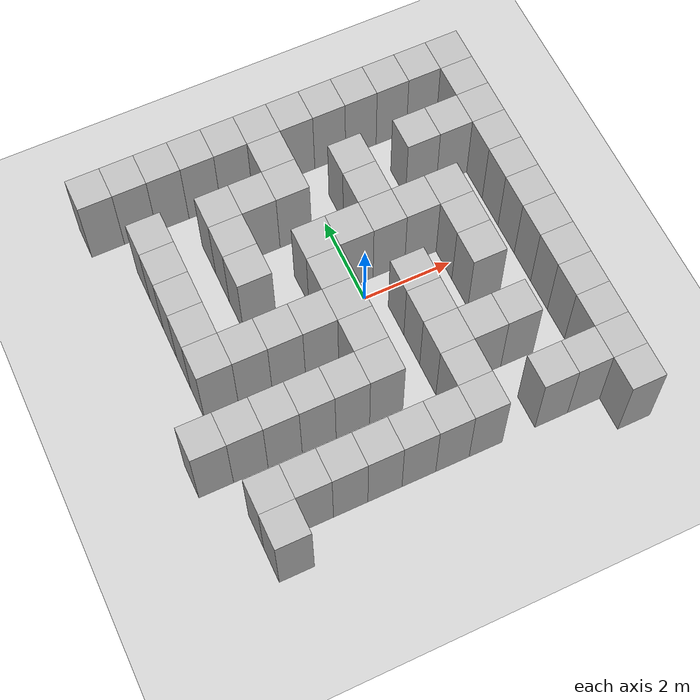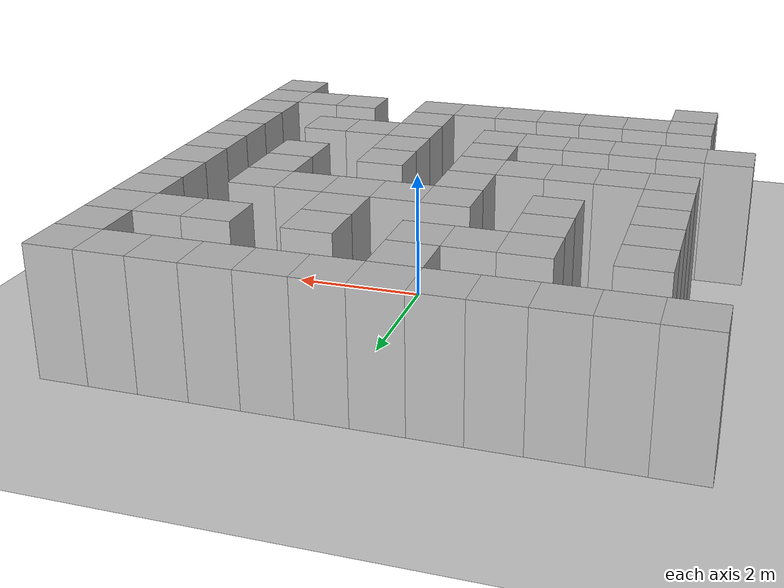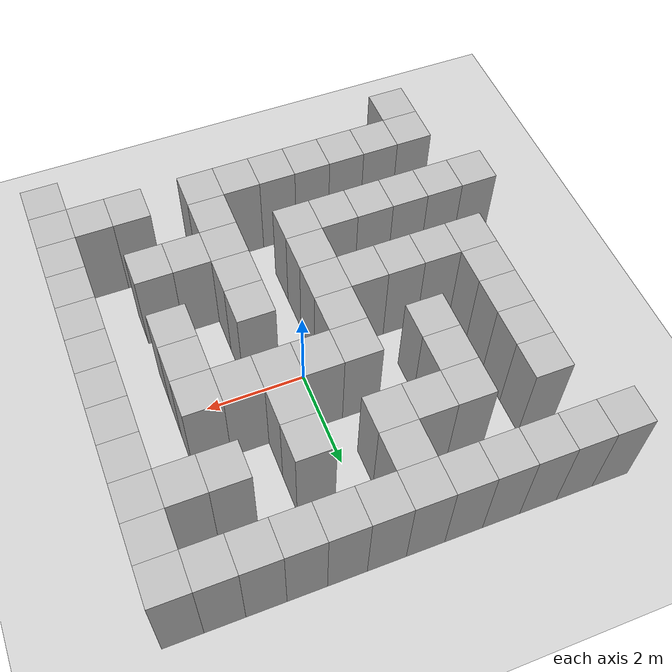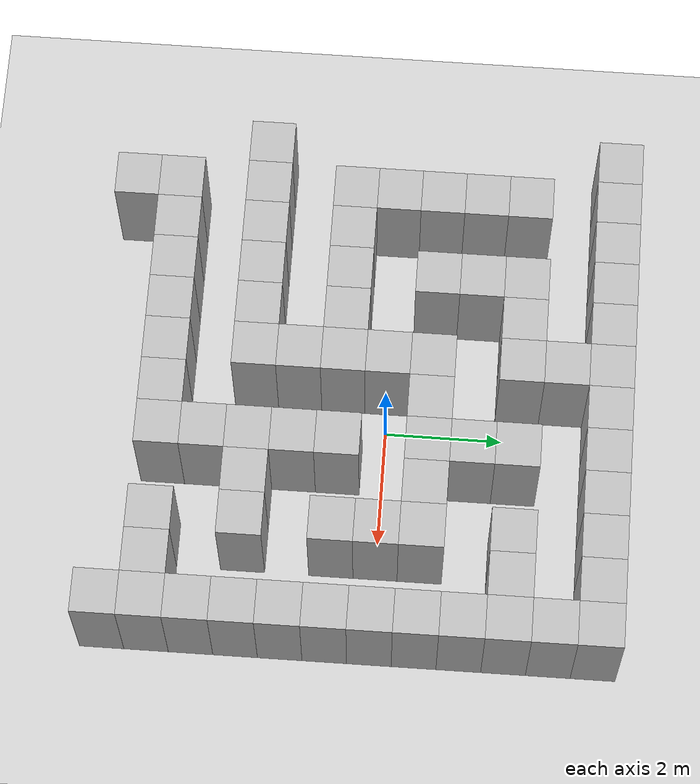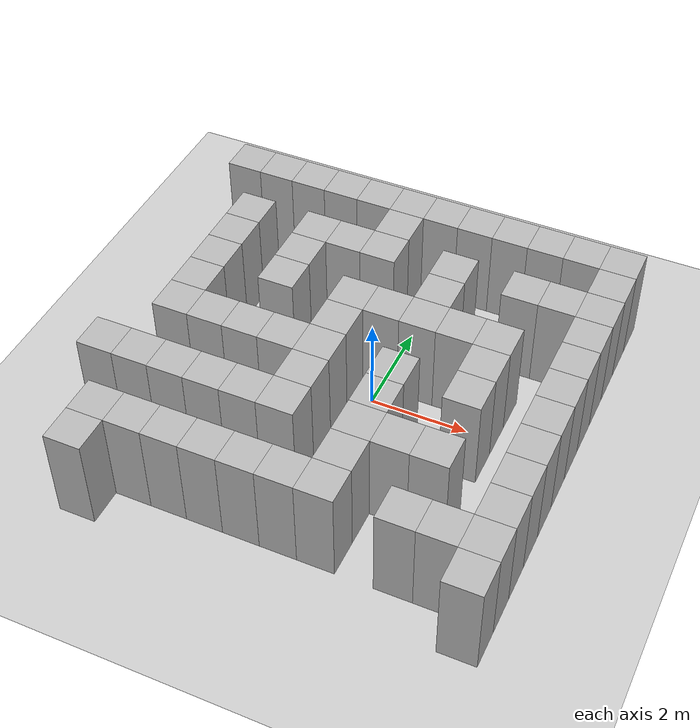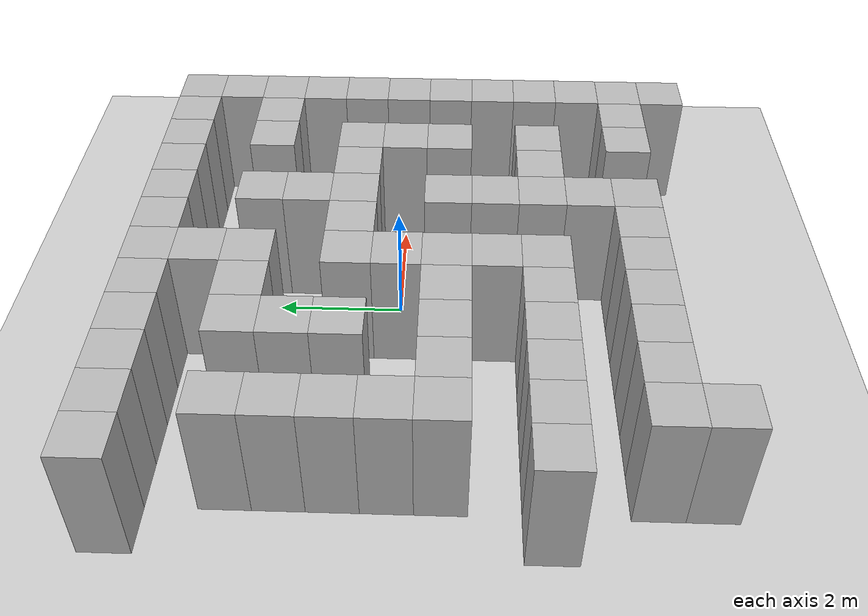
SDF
<?xml version="1.0" ?>
    <sdf version="1.5">
      <world name="default">
        <include>
          <uri>model://ground_plane</uri>
        </include>
        <include>
          <uri>model://sun</uri>
        </include>

                <model name="wall_1_0">
                  <static>true</static>
                  <link name="link">
                    <collision name="collision">
                      <geometry>
                        <box>
                          <size>0.75 0.75 2</size>
                        </box>
                      </geometry>
                    </collision>
                    <visual name="visual">
                      <geometry>
                        <box>
                          <size>0.75 0.75 2</size>
                        </box>
                      </geometry>
                    </visual>
                  </link>
                  <pose>-3.75 -4.5 1 0 0 0</pose>
                </model>

                <model name="wall_11_0">
                  <static>true</static>
                  <link name="link">
                    <collision name="collision">
                      <geometry>
                        <box>
                          <size>0.75 0.75 2</size>
                        </box>
                      </geometry>
                    </collision>
                    <visual name="visual">
                      <geometry>
                        <box>
                          <size>0.75 0.75 2</size>
                        </box>
                      </geometry>
                    </visual>
                  </link>
                  <pose>3.75 -4.5 1 0 0 0</pose>
                </model>

                <model name="wall_1_1">
                  <static>true</static>
                  <link name="link">
                    <collision name="collision">
                      <geometry>
                        <box>
                          <size>0.75 0.75 2</size>
                        </box>
                      </geometry>
                    </collision>
                    <visual name="visual">
                      <geometry>
                        <box>
                          <size>0.75 0.75 2</size>
                        </box>
                      </geometry>
                    </visual>
                  </link>
                  <pose>-3.75 -3.75 1 0 0 0</pose>
                </model>

                <model name="wall_2_1">
                  <static>true</static>
                  <link name="link">
                    <collision name="collision">
                      <geometry>
                        <box>
                          <size>0.75 0.75 2</size>
                        </box>
                      </geometry>
                    </collision>
                    <visual name="visual">
                      <geometry>
                        <box>
                          <size>0.75 0.75 2</size>
                        </box>
                      </geometry>
                    </visual>
                  </link>
                  <pose>-3.0 -3.75 1 0 0 0</pose>
                </model>

                <model name="wall_3_1">
                  <static>true</static>
                  <link name="link">
                    <collision name="collision">
                      <geometry>
                        <box>
                          <size>0.75 0.75 2</size>
                        </box>
                      </geometry>
                    </collision>
                    <visual name="visual">
                      <geometry>
                        <box>
                          <size>0.75 0.75 2</size>
                        </box>
                      </geometry>
                    </visual>
                  </link>
                  <pose>-2.25 -3.75 1 0 0 0</pose>
                </model>

                <model name="wall_4_1">
                  <static>true</static>
                  <link name="link">
                    <collision name="collision">
                      <geometry>
                        <box>
                          <size>0.75 0.75 2</size>
                        </box>
                      </geometry>
                    </collision>
                    <visual name="visual">
                      <geometry>
                        <box>
                          <size>0.75 0.75 2</size>
                        </box>
                      </geometry>
                    </visual>
                  </link>
                  <pose>-1.5 -3.75 1 0 0 0</pose>
                </model>

                <model name="wall_5_1">
                  <static>true</static>
                  <link name="link">
                    <collision name="collision">
                      <geometry>
                        <box>
                          <size>0.75 0.75 2</size>
                        </box>
                      </geometry>
                    </collision>
                    <visual name="visual">
                      <geometry>
                        <box>
                          <size>0.75 0.75 2</size>
                        </box>
                      </geometry>
                    </visual>
                  </link>
                  <pose>-0.75 -3.75 1 0 0 0</pose>
                </model>

                <model name="wall_6_1">
                  <static>true</static>
                  <link name="link">
                    <collision name="collision">
                      <geometry>
                        <box>
                          <size>0.75 0.75 2</size>
                        </box>
                      </geometry>
                    </collision>
                    <visual name="visual">
                      <geometry>
                        <box>
                          <size>0.75 0.75 2</size>
                        </box>
                      </geometry>
                    </visual>
                  </link>
                  <pose>0.0 -3.75 1 0 0 0</pose>
                </model>

                <model name="wall_7_1">
                  <static>true</static>
                  <link name="link">
                    <collision name="collision">
                      <geometry>
                        <box>
                          <size>0.75 0.75 2</size>
                        </box>
                      </geometry>
                    </collision>
                    <visual name="visual">
                      <geometry>
                        <box>
                          <size>0.75 0.75 2</size>
                        </box>
                      </geometry>
                    </visual>
                  </link>
                  <pose>0.75 -3.75 1 0 0 0</pose>
                </model>

                <model name="wall_9_1">
                  <static>true</static>
                  <link name="link">
                    <collision name="collision">
                      <geometry>
                        <box>
                          <size>0.75 0.75 2</size>
                        </box>
                      </geometry>
                    </collision>
                    <visual name="visual">
                      <geometry>
                        <box>
                          <size>0.75 0.75 2</size>
                        </box>
                      </geometry>
                    </visual>
                  </link>
                  <pose>2.25 -3.75 1 0 0 0</pose>
                </model>

                <model name="wall_10_1">
                  <static>true</static>
                  <link name="link">
                    <collision name="collision">
                      <geometry>
                        <box>
                          <size>0.75 0.75 2</size>
                        </box>
                      </geometry>
                    </collision>
                    <visual name="visual">
                      <geometry>
                        <box>
                          <size>0.75 0.75 2</size>
                        </box>
                      </geometry>
                    </visual>
                  </link>
                  <pose>3.0 -3.75 1 0 0 0</pose>
                </model>

                <model name="wall_11_1">
                  <static>true</static>
                  <link name="link">
                    <collision name="collision">
                      <geometry>
                        <box>
                          <size>0.75 0.75 2</size>
                        </box>
                      </geometry>
                    </collision>
                    <visual name="visual">
                      <geometry>
                        <box>
                          <size>0.75 0.75 2</size>
                        </box>
                      </geometry>
                    </visual>
                  </link>
                  <pose>3.75 -3.75 1 0 0 0</pose>
                </model>

                <model name="wall_7_2">
                  <static>true</static>
                  <link name="link">
                    <collision name="collision">
                      <geometry>
                        <box>
                          <size>0.75 0.75 2</size>
                        </box>
                      </geometry>
                    </collision>
                    <visual name="visual">
                      <geometry>
                        <box>
                          <size>0.75 0.75 2</size>
                        </box>
                      </geometry>
                    </visual>
                  </link>
                  <pose>0.75 -3.0 1 0 0 0</pose>
                </model>

                <model name="wall_11_2">
                  <static>true</static>
                  <link name="link">
                    <collision name="collision">
                      <geometry>
                        <box>
                          <size>0.75 0.75 2</size>
                        </box>
                      </geometry>
                    </collision>
                    <visual name="visual">
                      <geometry>
                        <box>
                          <size>0.75 0.75 2</size>
                        </box>
                      </geometry>
                    </visual>
                  </link>
                  <pose>3.75 -3.0 1 0 0 0</pose>
                </model>

                <model name="wall_0_3">
                  <static>true</static>
                  <link name="link">
                    <collision name="collision">
                      <geometry>
                        <box>
                          <size>0.75 0.75 2</size>
                        </box>
                      </geometry>
                    </collision>
                    <visual name="visual">
                      <geometry>
                        <box>
                          <size>0.75 0.75 2</size>
                        </box>
                      </geometry>
                    </visual>
                  </link>
                  <pose>-4.5 -2.25 1 0 0 0</pose>
                </model>

                <model name="wall_1_3">
                  <static>true</static>
                  <link name="link">
                    <collision name="collision">
                      <geometry>
                        <box>
                          <size>0.75 0.75 2</size>
                        </box>
                      </geometry>
                    </collision>
                    <visual name="visual">
                      <geometry>
                        <box>
                          <size>0.75 0.75 2</size>
                        </box>
                      </geometry>
                    </visual>
                  </link>
                  <pose>-3.75 -2.25 1 0 0 0</pose>
                </model>

                <model name="wall_2_3">
                  <static>true</static>
                  <link name="link">
                    <collision name="collision">
                      <geometry>
                        <box>
                          <size>0.75 0.75 2</size>
                        </box>
                      </geometry>
                    </collision>
                    <visual name="visual">
                      <geometry>
                        <box>
                          <size>0.75 0.75 2</size>
                        </box>
                      </geometry>
                    </visual>
                  </link>
                  <pose>-3.0 -2.25 1 0 0 0</pose>
                </model>

                <model name="wall_3_3">
                  <static>true</static>
                  <link name="link">
                    <collision name="collision">
                      <geometry>
                        <box>
                          <size>0.75 0.75 2</size>
                        </box>
                      </geometry>
                    </collision>
                    <visual name="visual">
                      <geometry>
                        <box>
                          <size>0.75 0.75 2</size>
                        </box>
                      </geometry>
                    </visual>
                  </link>
                  <pose>-2.25 -2.25 1 0 0 0</pose>
                </model>

                <model name="wall_4_3">
                  <static>true</static>
                  <link name="link">
                    <collision name="collision">
                      <geometry>
                        <box>
                          <size>0.75 0.75 2</size>
                        </box>
                      </geometry>
                    </collision>
                    <visual name="visual">
                      <geometry>
                        <box>
                          <size>0.75 0.75 2</size>
                        </box>
                      </geometry>
                    </visual>
                  </link>
                  <pose>-1.5 -2.25 1 0 0 0</pose>
                </model>

                <model name="wall_5_3">
                  <static>true</static>
                  <link name="link">
                    <collision name="collision">
                      <geometry>
                        <box>
                          <size>0.75 0.75 2</size>
                        </box>
                      </geometry>
                    </collision>
                    <visual name="visual">
                      <geometry>
                        <box>
                          <size>0.75 0.75 2</size>
                        </box>
                      </geometry>
                    </visual>
                  </link>
                  <pose>-0.75 -2.25 1 0 0 0</pose>
                </model>

                <model name="wall_7_3">
                  <static>true</static>
                  <link name="link">
                    <collision name="collision">
                      <geometry>
                        <box>
                          <size>0.75 0.75 2</size>
                        </box>
                      </geometry>
                    </collision>
                    <visual name="visual">
                      <geometry>
                        <box>
                          <size>0.75 0.75 2</size>
                        </box>
                      </geometry>
                    </visual>
                  </link>
                  <pose>0.75 -2.25 1 0 0 0</pose>
                </model>

                <model name="wall_8_3">
                  <static>true</static>
                  <link name="link">
                    <collision name="collision">
                      <geometry>
                        <box>
                          <size>0.75 0.75 2</size>
                        </box>
                      </geometry>
                    </collision>
                    <visual name="visual">
                      <geometry>
                        <box>
                          <size>0.75 0.75 2</size>
                        </box>
                      </geometry>
                    </visual>
                  </link>
                  <pose>1.5 -2.25 1 0 0 0</pose>
                </model>

                <model name="wall_9_3">
                  <static>true</static>
                  <link name="link">
                    <collision name="collision">
                      <geometry>
                        <box>
                          <size>0.75 0.75 2</size>
                        </box>
                      </geometry>
                    </collision>
                    <visual name="visual">
                      <geometry>
                        <box>
                          <size>0.75 0.75 2</size>
                        </box>
                      </geometry>
                    </visual>
                  </link>
                  <pose>2.25 -2.25 1 0 0 0</pose>
                </model>

                <model name="wall_11_3">
                  <static>true</static>
                  <link name="link">
                    <collision name="collision">
                      <geometry>
                        <box>
                          <size>0.75 0.75 2</size>
                        </box>
                      </geometry>
                    </collision>
                    <visual name="visual">
                      <geometry>
                        <box>
                          <size>0.75 0.75 2</size>
                        </box>
                      </geometry>
                    </visual>
                  </link>
                  <pose>3.75 -2.25 1 0 0 0</pose>
                </model>

                <model name="wall_5_4">
                  <static>true</static>
                  <link name="link">
                    <collision name="collision">
                      <geometry>
                        <box>
                          <size>0.75 0.75 2</size>
                        </box>
                      </geometry>
                    </collision>
                    <visual name="visual">
                      <geometry>
                        <box>
                          <size>0.75 0.75 2</size>
                        </box>
                      </geometry>
                    </visual>
                  </link>
                  <pose>-0.75 -1.5 1 0 0 0</pose>
                </model>

                <model name="wall_7_4">
                  <static>true</static>
                  <link name="link">
                    <collision name="collision">
                      <geometry>
                        <box>
                          <size>0.75 0.75 2</size>
                        </box>
                      </geometry>
                    </collision>
                    <visual name="visual">
                      <geometry>
                        <box>
                          <size>0.75 0.75 2</size>
                        </box>
                      </geometry>
                    </visual>
                  </link>
                  <pose>0.75 -1.5 1 0 0 0</pose>
                </model>

                <model name="wall_11_4">
                  <static>true</static>
                  <link name="link">
                    <collision name="collision">
                      <geometry>
                        <box>
                          <size>0.75 0.75 2</size>
                        </box>
                      </geometry>
                    </collision>
                    <visual name="visual">
                      <geometry>
                        <box>
                          <size>0.75 0.75 2</size>
                        </box>
                      </geometry>
                    </visual>
                  </link>
                  <pose>3.75 -1.5 1 0 0 0</pose>
                </model>

                <model name="wall_1_5">
                  <static>true</static>
                  <link name="link">
                    <collision name="collision">
                      <geometry>
                        <box>
                          <size>0.75 0.75 2</size>
                        </box>
                      </geometry>
                    </collision>
                    <visual name="visual">
                      <geometry>
                        <box>
                          <size>0.75 0.75 2</size>
                        </box>
                      </geometry>
                    </visual>
                  </link>
                  <pose>-3.75 -0.75 1 0 0 0</pose>
                </model>

                <model name="wall_2_5">
                  <static>true</static>
                  <link name="link">
                    <collision name="collision">
                      <geometry>
                        <box>
                          <size>0.75 0.75 2</size>
                        </box>
                      </geometry>
                    </collision>
                    <visual name="visual">
                      <geometry>
                        <box>
                          <size>0.75 0.75 2</size>
                        </box>
                      </geometry>
                    </visual>
                  </link>
                  <pose>-3.0 -0.75 1 0 0 0</pose>
                </model>

                <model name="wall_3_5">
                  <static>true</static>
                  <link name="link">
                    <collision name="collision">
                      <geometry>
                        <box>
                          <size>0.75 0.75 2</size>
                        </box>
                      </geometry>
                    </collision>
                    <visual name="visual">
                      <geometry>
                        <box>
                          <size>0.75 0.75 2</size>
                        </box>
                      </geometry>
                    </visual>
                  </link>
                  <pose>-2.25 -0.75 1 0 0 0</pose>
                </model>

                <model name="wall_4_5">
                  <static>true</static>
                  <link name="link">
                    <collision name="collision">
                      <geometry>
                        <box>
                          <size>0.75 0.75 2</size>
                        </box>
                      </geometry>
                    </collision>
                    <visual name="visual">
                      <geometry>
                        <box>
                          <size>0.75 0.75 2</size>
                        </box>
                      </geometry>
                    </visual>
                  </link>
                  <pose>-1.5 -0.75 1 0 0 0</pose>
                </model>

                <model name="wall_5_5">
                  <static>true</static>
                  <link name="link">
                    <collision name="collision">
                      <geometry>
                        <box>
                          <size>0.75 0.75 2</size>
                        </box>
                      </geometry>
                    </collision>
                    <visual name="visual">
                      <geometry>
                        <box>
                          <size>0.75 0.75 2</size>
                        </box>
                      </geometry>
                    </visual>
                  </link>
                  <pose>-0.75 -0.75 1 0 0 0</pose>
                </model>

                <model name="wall_7_5">
                  <static>true</static>
                  <link name="link">
                    <collision name="collision">
                      <geometry>
                        <box>
                          <size>0.75 0.75 2</size>
                        </box>
                      </geometry>
                    </collision>
                    <visual name="visual">
                      <geometry>
                        <box>
                          <size>0.75 0.75 2</size>
                        </box>
                      </geometry>
                    </visual>
                  </link>
                  <pose>0.75 -0.75 1 0 0 0</pose>
                </model>

                <model name="wall_9_5">
                  <static>true</static>
                  <link name="link">
                    <collision name="collision">
                      <geometry>
                        <box>
                          <size>0.75 0.75 2</size>
                        </box>
                      </geometry>
                    </collision>
                    <visual name="visual">
                      <geometry>
                        <box>
                          <size>0.75 0.75 2</size>
                        </box>
                      </geometry>
                    </visual>
                  </link>
                  <pose>2.25 -0.75 1 0 0 0</pose>
                </model>

                <model name="wall_11_5">
                  <static>true</static>
                  <link name="link">
                    <collision name="collision">
                      <geometry>
                        <box>
                          <size>0.75 0.75 2</size>
                        </box>
                      </geometry>
                    </collision>
                    <visual name="visual">
                      <geometry>
                        <box>
                          <size>0.75 0.75 2</size>
                        </box>
                      </geometry>
                    </visual>
                  </link>
                  <pose>3.75 -0.75 1 0 0 0</pose>
                </model>

                <model name="wall_1_6">
                  <static>true</static>
                  <link name="link">
                    <collision name="collision">
                      <geometry>
                        <box>
                          <size>0.75 0.75 2</size>
                        </box>
                      </geometry>
                    </collision>
                    <visual name="visual">
                      <geometry>
                        <box>
                          <size>0.75 0.75 2</size>
                        </box>
                      </geometry>
                    </visual>
                  </link>
                  <pose>-3.75 0.0 1 0 0 0</pose>
                </model>

                <model name="wall_5_6">
                  <static>true</static>
                  <link name="link">
                    <collision name="collision">
                      <geometry>
                        <box>
                          <size>0.75 0.75 2</size>
                        </box>
                      </geometry>
                    </collision>
                    <visual name="visual">
                      <geometry>
                        <box>
                          <size>0.75 0.75 2</size>
                        </box>
                      </geometry>
                    </visual>
                  </link>
                  <pose>-0.75 0.0 1 0 0 0</pose>
                </model>

                <model name="wall_9_6">
                  <static>true</static>
                  <link name="link">
                    <collision name="collision">
                      <geometry>
                        <box>
                          <size>0.75 0.75 2</size>
                        </box>
                      </geometry>
                    </collision>
                    <visual name="visual">
                      <geometry>
                        <box>
                          <size>0.75 0.75 2</size>
                        </box>
                      </geometry>
                    </visual>
                  </link>
                  <pose>2.25 0.0 1 0 0 0</pose>
                </model>

                <model name="wall_11_6">
                  <static>true</static>
                  <link name="link">
                    <collision name="collision">
                      <geometry>
                        <box>
                          <size>0.75 0.75 2</size>
                        </box>
                      </geometry>
                    </collision>
                    <visual name="visual">
                      <geometry>
                        <box>
                          <size>0.75 0.75 2</size>
                        </box>
                      </geometry>
                    </visual>
                  </link>
                  <pose>3.75 0.0 1 0 0 0</pose>
                </model>

                <model name="wall_1_7">
                  <static>true</static>
                  <link name="link">
                    <collision name="collision">
                      <geometry>
                        <box>
                          <size>0.75 0.75 2</size>
                        </box>
                      </geometry>
                    </collision>
                    <visual name="visual">
                      <geometry>
                        <box>
                          <size>0.75 0.75 2</size>
                        </box>
                      </geometry>
                    </visual>
                  </link>
                  <pose>-3.75 0.75 1 0 0 0</pose>
                </model>

                <model name="wall_3_7">
                  <static>true</static>
                  <link name="link">
                    <collision name="collision">
                      <geometry>
                        <box>
                          <size>0.75 0.75 2</size>
                        </box>
                      </geometry>
                    </collision>
                    <visual name="visual">
                      <geometry>
                        <box>
                          <size>0.75 0.75 2</size>
                        </box>
                      </geometry>
                    </visual>
                  </link>
                  <pose>-2.25 0.75 1 0 0 0</pose>
                </model>

                <model name="wall_5_7">
                  <static>true</static>
                  <link name="link">
                    <collision name="collision">
                      <geometry>
                        <box>
                          <size>0.75 0.75 2</size>
                        </box>
                      </geometry>
                    </collision>
                    <visual name="visual">
                      <geometry>
                        <box>
                          <size>0.75 0.75 2</size>
                        </box>
                      </geometry>
                    </visual>
                  </link>
                  <pose>-0.75 0.75 1 0 0 0</pose>
                </model>

                <model name="wall_6_7">
                  <static>true</static>
                  <link name="link">
                    <collision name="collision">
                      <geometry>
                        <box>
                          <size>0.75 0.75 2</size>
                        </box>
                      </geometry>
                    </collision>
                    <visual name="visual">
                      <geometry>
                        <box>
                          <size>0.75 0.75 2</size>
                        </box>
                      </geometry>
                    </visual>
                  </link>
                  <pose>0.0 0.75 1 0 0 0</pose>
                </model>

                <model name="wall_7_7">
                  <static>true</static>
                  <link name="link">
                    <collision name="collision">
                      <geometry>
                        <box>
                          <size>0.75 0.75 2</size>
                        </box>
                      </geometry>
                    </collision>
                    <visual name="visual">
                      <geometry>
                        <box>
                          <size>0.75 0.75 2</size>
                        </box>
                      </geometry>
                    </visual>
                  </link>
                  <pose>0.75 0.75 1 0 0 0</pose>
                </model>

                <model name="wall_8_7">
                  <static>true</static>
                  <link name="link">
                    <collision name="collision">
                      <geometry>
                        <box>
                          <size>0.75 0.75 2</size>
                        </box>
                      </geometry>
                    </collision>
                    <visual name="visual">
                      <geometry>
                        <box>
                          <size>0.75 0.75 2</size>
                        </box>
                      </geometry>
                    </visual>
                  </link>
                  <pose>1.5 0.75 1 0 0 0</pose>
                </model>

                <model name="wall_9_7">
                  <static>true</static>
                  <link name="link">
                    <collision name="collision">
                      <geometry>
                        <box>
                          <size>0.75 0.75 2</size>
                        </box>
                      </geometry>
                    </collision>
                    <visual name="visual">
                      <geometry>
                        <box>
                          <size>0.75 0.75 2</size>
                        </box>
                      </geometry>
                    </visual>
                  </link>
                  <pose>2.25 0.75 1 0 0 0</pose>
                </model>

                <model name="wall_11_7">
                  <static>true</static>
                  <link name="link">
                    <collision name="collision">
                      <geometry>
                        <box>
                          <size>0.75 0.75 2</size>
                        </box>
                      </geometry>
                    </collision>
                    <visual name="visual">
                      <geometry>
                        <box>
                          <size>0.75 0.75 2</size>
                        </box>
                      </geometry>
                    </visual>
                  </link>
                  <pose>3.75 0.75 1 0 0 0</pose>
                </model>

                <model name="wall_1_8">
                  <static>true</static>
                  <link name="link">
                    <collision name="collision">
                      <geometry>
                        <box>
                          <size>0.75 0.75 2</size>
                        </box>
                      </geometry>
                    </collision>
                    <visual name="visual">
                      <geometry>
                        <box>
                          <size>0.75 0.75 2</size>
                        </box>
                      </geometry>
                    </visual>
                  </link>
                  <pose>-3.75 1.5 1 0 0 0</pose>
                </model>

                <model name="wall_3_8">
                  <static>true</static>
                  <link name="link">
                    <collision name="collision">
                      <geometry>
                        <box>
                          <size>0.75 0.75 2</size>
                        </box>
                      </geometry>
                    </collision>
                    <visual name="visual">
                      <geometry>
                        <box>
                          <size>0.75 0.75 2</size>
                        </box>
                      </geometry>
                    </visual>
                  </link>
                  <pose>-2.25 1.5 1 0 0 0</pose>
                </model>

                <model name="wall_7_8">
                  <static>true</static>
                  <link name="link">
                    <collision name="collision">
                      <geometry>
                        <box>
                          <size>0.75 0.75 2</size>
                        </box>
                      </geometry>
                    </collision>
                    <visual name="visual">
                      <geometry>
                        <box>
                          <size>0.75 0.75 2</size>
                        </box>
                      </geometry>
                    </visual>
                  </link>
                  <pose>0.75 1.5 1 0 0 0</pose>
                </model>

                <model name="wall_11_8">
                  <static>true</static>
                  <link name="link">
                    <collision name="collision">
                      <geometry>
                        <box>
                          <size>0.75 0.75 2</size>
                        </box>
                      </geometry>
                    </collision>
                    <visual name="visual">
                      <geometry>
                        <box>
                          <size>0.75 0.75 2</size>
                        </box>
                      </geometry>
                    </visual>
                  </link>
                  <pose>3.75 1.5 1 0 0 0</pose>
                </model>

                <model name="wall_1_9">
                  <static>true</static>
                  <link name="link">
                    <collision name="collision">
                      <geometry>
                        <box>
                          <size>0.75 0.75 2</size>
                        </box>
                      </geometry>
                    </collision>
                    <visual name="visual">
                      <geometry>
                        <box>
                          <size>0.75 0.75 2</size>
                        </box>
                      </geometry>
                    </visual>
                  </link>
                  <pose>-3.75 2.25 1 0 0 0</pose>
                </model>

                <model name="wall_3_9">
                  <static>true</static>
                  <link name="link">
                    <collision name="collision">
                      <geometry>
                        <box>
                          <size>0.75 0.75 2</size>
                        </box>
                      </geometry>
                    </collision>
                    <visual name="visual">
                      <geometry>
                        <box>
                          <size>0.75 0.75 2</size>
                        </box>
                      </geometry>
                    </visual>
                  </link>
                  <pose>-2.25 2.25 1 0 0 0</pose>
                </model>

                <model name="wall_4_9">
                  <static>true</static>
                  <link name="link">
                    <collision name="collision">
                      <geometry>
                        <box>
                          <size>0.75 0.75 2</size>
                        </box>
                      </geometry>
                    </collision>
                    <visual name="visual">
                      <geometry>
                        <box>
                          <size>0.75 0.75 2</size>
                        </box>
                      </geometry>
                    </visual>
                  </link>
                  <pose>-1.5 2.25 1 0 0 0</pose>
                </model>

                <model name="wall_5_9">
                  <static>true</static>
                  <link name="link">
                    <collision name="collision">
                      <geometry>
                        <box>
                          <size>0.75 0.75 2</size>
                        </box>
                      </geometry>
                    </collision>
                    <visual name="visual">
                      <geometry>
                        <box>
                          <size>0.75 0.75 2</size>
                        </box>
                      </geometry>
                    </visual>
                  </link>
                  <pose>-0.75 2.25 1 0 0 0</pose>
                </model>

                <model name="wall_7_9">
                  <static>true</static>
                  <link name="link">
                    <collision name="collision">
                      <geometry>
                        <box>
                          <size>0.75 0.75 2</size>
                        </box>
                      </geometry>
                    </collision>
                    <visual name="visual">
                      <geometry>
                        <box>
                          <size>0.75 0.75 2</size>
                        </box>
                      </geometry>
                    </visual>
                  </link>
                  <pose>0.75 2.25 1 0 0 0</pose>
                </model>

                <model name="wall_9_9">
                  <static>true</static>
                  <link name="link">
                    <collision name="collision">
                      <geometry>
                        <box>
                          <size>0.75 0.75 2</size>
                        </box>
                      </geometry>
                    </collision>
                    <visual name="visual">
                      <geometry>
                        <box>
                          <size>0.75 0.75 2</size>
                        </box>
                      </geometry>
                    </visual>
                  </link>
                  <pose>2.25 2.25 1 0 0 0</pose>
                </model>

                <model name="wall_10_9">
                  <static>true</static>
                  <link name="link">
                    <collision name="collision">
                      <geometry>
                        <box>
                          <size>0.75 0.75 2</size>
                        </box>
                      </geometry>
                    </collision>
                    <visual name="visual">
                      <geometry>
                        <box>
                          <size>0.75 0.75 2</size>
                        </box>
                      </geometry>
                    </visual>
                  </link>
                  <pose>3.0 2.25 1 0 0 0</pose>
                </model>

                <model name="wall_11_9">
                  <static>true</static>
                  <link name="link">
                    <collision name="collision">
                      <geometry>
                        <box>
                          <size>0.75 0.75 2</size>
                        </box>
                      </geometry>
                    </collision>
                    <visual name="visual">
                      <geometry>
                        <box>
                          <size>0.75 0.75 2</size>
                        </box>
                      </geometry>
                    </visual>
                  </link>
                  <pose>3.75 2.25 1 0 0 0</pose>
                </model>

                <model name="wall_5_10">
                  <static>true</static>
                  <link name="link">
                    <collision name="collision">
                      <geometry>
                        <box>
                          <size>0.75 0.75 2</size>
                        </box>
                      </geometry>
                    </collision>
                    <visual name="visual">
                      <geometry>
                        <box>
                          <size>0.75 0.75 2</size>
                        </box>
                      </geometry>
                    </visual>
                  </link>
                  <pose>-0.75 3.0 1 0 0 0</pose>
                </model>

                <model name="wall_11_10">
                  <static>true</static>
                  <link name="link">
                    <collision name="collision">
                      <geometry>
                        <box>
                          <size>0.75 0.75 2</size>
                        </box>
                      </geometry>
                    </collision>
                    <visual name="visual">
                      <geometry>
                        <box>
                          <size>0.75 0.75 2</size>
                        </box>
                      </geometry>
                    </visual>
                  </link>
                  <pose>3.75 3.0 1 0 0 0</pose>
                </model>

                <model name="wall_0_11">
                  <static>true</static>
                  <link name="link">
                    <collision name="collision">
                      <geometry>
                        <box>
                          <size>0.75 0.75 2</size>
                        </box>
                      </geometry>
                    </collision>
                    <visual name="visual">
                      <geometry>
                        <box>
                          <size>0.75 0.75 2</size>
                        </box>
                      </geometry>
                    </visual>
                  </link>
                  <pose>-4.5 3.75 1 0 0 0</pose>
                </model>

                <model name="wall_1_11">
                  <static>true</static>
                  <link name="link">
                    <collision name="collision">
                      <geometry>
                        <box>
                          <size>0.75 0.75 2</size>
                        </box>
                      </geometry>
                    </collision>
                    <visual name="visual">
                      <geometry>
                        <box>
                          <size>0.75 0.75 2</size>
                        </box>
                      </geometry>
                    </visual>
                  </link>
                  <pose>-3.75 3.75 1 0 0 0</pose>
                </model>

                <model name="wall_2_11">
                  <static>true</static>
                  <link name="link">
                    <collision name="collision">
                      <geometry>
                        <box>
                          <size>0.75 0.75 2</size>
                        </box>
                      </geometry>
                    </collision>
                    <visual name="visual">
                      <geometry>
                        <box>
                          <size>0.75 0.75 2</size>
                        </box>
                      </geometry>
                    </visual>
                  </link>
                  <pose>-3.0 3.75 1 0 0 0</pose>
                </model>

                <model name="wall_3_11">
                  <static>true</static>
                  <link name="link">
                    <collision name="collision">
                      <geometry>
                        <box>
                          <size>0.75 0.75 2</size>
                        </box>
                      </geometry>
                    </collision>
                    <visual name="visual">
                      <geometry>
                        <box>
                          <size>0.75 0.75 2</size>
                        </box>
                      </geometry>
                    </visual>
                  </link>
                  <pose>-2.25 3.75 1 0 0 0</pose>
                </model>

                <model name="wall_4_11">
                  <static>true</static>
                  <link name="link">
                    <collision name="collision">
                      <geometry>
                        <box>
                          <size>0.75 0.75 2</size>
                        </box>
                      </geometry>
                    </collision>
                    <visual name="visual">
                      <geometry>
                        <box>
                          <size>0.75 0.75 2</size>
                        </box>
                      </geometry>
                    </visual>
                  </link>
                  <pose>-1.5 3.75 1 0 0 0</pose>
                </model>

                <model name="wall_5_11">
                  <static>true</static>
                  <link name="link">
                    <collision name="collision">
                      <geometry>
                        <box>
                          <size>0.75 0.75 2</size>
                        </box>
                      </geometry>
                    </collision>
                    <visual name="visual">
                      <geometry>
                        <box>
                          <size>0.75 0.75 2</size>
                        </box>
                      </geometry>
                    </visual>
                  </link>
                  <pose>-0.75 3.75 1 0 0 0</pose>
                </model>

                <model name="wall_6_11">
                  <static>true</static>
                  <link name="link">
                    <collision name="collision">
                      <geometry>
                        <box>
                          <size>0.75 0.75 2</size>
                        </box>
                      </geometry>
                    </collision>
                    <visual name="visual">
                      <geometry>
                        <box>
                          <size>0.75 0.75 2</size>
                        </box>
                      </geometry>
                    </visual>
                  </link>
                  <pose>0.0 3.75 1 0 0 0</pose>
                </model>

                <model name="wall_7_11">
                  <static>true</static>
                  <link name="link">
                    <collision name="collision">
                      <geometry>
                        <box>
                          <size>0.75 0.75 2</size>
                        </box>
                      </geometry>
                    </collision>
                    <visual name="visual">
                      <geometry>
                        <box>
                          <size>0.75 0.75 2</size>
                        </box>
                      </geometry>
                    </visual>
                  </link>
                  <pose>0.75 3.75 1 0 0 0</pose>
                </model>

                <model name="wall_8_11">
                  <static>true</static>
                  <link name="link">
                    <collision name="collision">
                      <geometry>
                        <box>
                          <size>0.75 0.75 2</size>
                        </box>
                      </geometry>
                    </collision>
                    <visual name="visual">
                      <geometry>
                        <box>
                          <size>0.75 0.75 2</size>
                        </box>
                      </geometry>
                    </visual>
                  </link>
                  <pose>1.5 3.75 1 0 0 0</pose>
                </model>

                <model name="wall_9_11">
                  <static>true</static>
                  <link name="link">
                    <collision name="collision">
                      <geometry>
                        <box>
                          <size>0.75 0.75 2</size>
                        </box>
                      </geometry>
                    </collision>
                    <visual name="visual">
                      <geometry>
                        <box>
                          <size>0.75 0.75 2</size>
                        </box>
                      </geometry>
                    </visual>
                  </link>
                  <pose>2.25 3.75 1 0 0 0</pose>
                </model>

                <model name="wall_10_11">
                  <static>true</static>
                  <link name="link">
                    <collision name="collision">
                      <geometry>
                        <box>
                          <size>0.75 0.75 2</size>
                        </box>
                      </geometry>
                    </collision>
                    <visual name="visual">
                      <geometry>
                        <box>
                          <size>0.75 0.75 2</size>
                        </box>
                      </geometry>
                    </visual>
                  </link>
                  <pose>3.0 3.75 1 0 0 0</pose>
                </model>

                <model name="wall_11_11">
                  <static>true</static>
                  <link name="link">
                    <collision name="collision">
                      <geometry>
                        <box>
                          <size>0.75 0.75 2</size>
                        </box>
                      </geometry>
                    </collision>
                    <visual name="visual">
                      <geometry>
                        <box>
                          <size>0.75 0.75 2</size>
                        </box>
                      </geometry>
                    </visual>
                  </link>
                  <pose>3.75 3.75 1 0 0 0</pose>
                </model>

      </world>
    </sdf>
